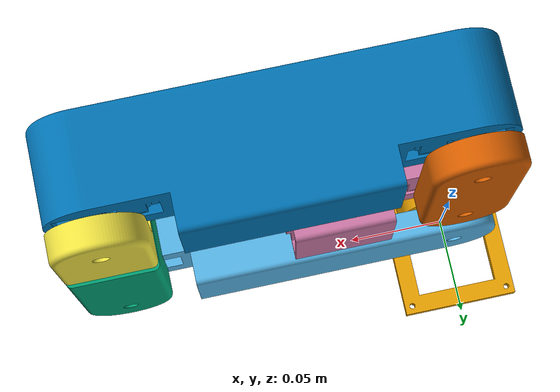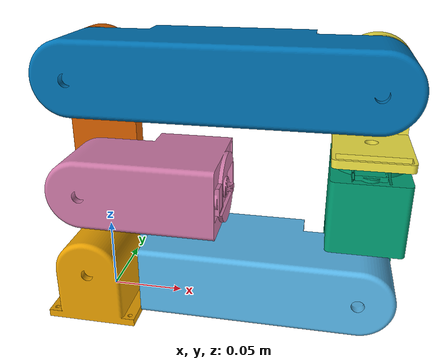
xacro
<?xml version="1.0"?>
<robot xmlns:xacro="http://www.ros.org/wiki/xacro" name="arm3">
    <xacro:arg name="initial_positions_file" default="initial_positions.yaml" />

    <!-- Import arm3 urdf file -->
    <xacro:include filename="$(find arm3_description)/urdf/arm3.urdf" />

    <!-- Import control_xacro -->
    <xacro:include filename="arm3.ros2_control.xacro" />

    <xacro:arm3_ros2_control name="FakeSystem" />

</robot>

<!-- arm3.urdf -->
<robot name="arm3">
    <link name="base_link">
        <inertial>
            <origin xyz="-1.188415750328633e-09 -0.020862080792945627 0.02351089822104169" rpy="0.0 0.0 0.0" />
            <mass value="0.8649605268138625" />
            <inertia ixx="0.0005091080176490385" iyy="0.00040051606955903633" izz="0.000456781148628419" ixy="2.017447833990726e-11" iyz="6.001050632423394e-05" ixz="1.2800998119586669e-11" />
        </inertial>
        <visual name="base_link_visual">
            <origin xyz="0.0 0.0 0.0" rpy="0.0 0.0 0.0" />
            <geometry>
                <mesh filename="package://arm3_description/meshes/base_link.stl" scale="0.001 0.001 0.001" />
            </geometry>
        </visual>
        <collision name="base_link_collision">
            <origin xyz="0.0 0.0 0.0" rpy="0.0 0.0 0.0" />
            <geometry>
                <mesh filename="package://arm3_description/meshes/base_link.stl" scale="0.001 0.001 0.001" />
            </geometry>
        </collision>
    </link>
    <link name="arm_1">
        <inertial>
            <origin xyz="0.10650064034424997 -5.514573064857586e-10 -0.014859090607788348" rpy="0.0 -0.0 0.0" />
            <mass value="1.8640074270642077" />
            <inertia ixx="0.0012293916356250095" iyy="0.007030587931090102" izz="0.006618762705733333" ixy="9.733320139454493e-11" iyz="1.4003596025824482e-11" ixz="0.0010796405966336652" />
        </inertial>
        <visual name="arm_1_visual">
            <origin xyz="0.072 -0.045 0.0030000021411000083" rpy="1.5707963267948963 4.5261550790144846e-79 -2.2315667455012782e-110" />
            <geometry>
                <mesh filename="package://arm3_description/meshes/arm_1.stl" scale="0.001 0.001 0.001" />
            </geometry>
        </visual>
        <collision name="arm_1_collision">
            <origin xyz="0.072 -0.045 0.0030000021411000083" rpy="1.5707963267948963 4.5261550790144846e-79 -2.2315667455012782e-110" />
            <geometry>
                <mesh filename="package://arm3_description/meshes/arm_1.stl" scale="0.001 0.001 0.001" />
            </geometry>
        </collision>
    </link>
    <link name="arm_2">
        <inertial>
            <origin xyz="9.298725345274761e-10 -0.046322761859584 -0.01124850249317479" rpy="0.0 -0.0 0.0" />
            <mass value="1.1054515445122186" />
            <inertia ixx="0.0011269854729143332" iyy="0.0006146812341975352" izz="0.0009027924480591032" ixy="6.493354465231249e-12" iyz="-0.00029226251125904893" ixz="3.3793059496523004e-12" />
        </inertial>
        <visual name="arm_2_visual">
            <origin xyz="0.013500000000000014 -0.05849999999999998 0.003000004282200013" rpy="1.5707963267948963 -0.0 2.698802673467014e-79" />
            <geometry>
                <mesh filename="package://arm3_description/meshes/arm_2.stl" scale="0.001 0.001 0.001" />
            </geometry>
        </visual>
        <collision name="arm_2_collision">
            <origin xyz="0.013500000000000014 -0.05849999999999998 0.003000004282200013" rpy="1.5707963267948963 -0.0 2.698802673467014e-79" />
            <geometry>
                <mesh filename="package://arm3_description/meshes/arm_2.stl" scale="0.001 0.001 0.001" />
            </geometry>
        </collision>
    </link>
    <link name="arm_3">
        <inertial>
            <origin xyz="-3.801403636316536e-15 0.01766179279414297 0.028362432726066623" rpy="0.0 -0.0 0.0" />
            <mass value="0.3866919911236247" />
            <inertia ixx="0.00022345752781510568" iyy="0.00020435292015233072" izz="0.00014285677267166473" ixy="3.0040753277961116e-11" iyz="-6.055343015939629e-05" ixz="3.004076674917311e-11" />
        </inertial>
        <visual name="arm_3_visual">
            <origin xyz="7.105427357601002e-17 4.282200001259895e-09 0.0030000021410999623" rpy="-1.9890203340171088e-16 -0.0 5.618011625630638e-95" />
            <geometry>
                <mesh filename="package://arm3_description/meshes/arm_3.stl" scale="0.001 0.001 0.001" />
            </geometry>
        </visual>
        <collision name="arm_3_collision">
            <origin xyz="7.105427357601002e-17 4.282200001259895e-09 0.0030000021410999623" rpy="-1.9890203340171088e-16 -0.0 5.618011625630638e-95" />
            <geometry>
                <mesh filename="package://arm3_description/meshes/arm_3.stl" scale="0.001 0.001 0.001" />
            </geometry>
        </collision>
    </link>
    <link name="arm_4">
        <inertial>
            <origin xyz="-0.08599999999999698 2.1645027814543027e-09 0.02008578479393376" rpy="0.0 -0.0 0.0" />
            <mass value="2.371653909040455" />
            <inertia ixx="0.0012533831266328815" iyy="0.01074299476657482" izz="0.010481174641859214" ixy="-1.767307966638043e-10" iyz="-3.4019488615030274e-13" ixz="1.4635075977272978e-16" />
        </inertial>
        <visual name="arm_4_visual">
            <origin xyz="-0.09999999999999994 0.04500000214109992 -4.282200002092563e-09" rpy="-1.5707963267948966 -0.0 0.0" />
            <geometry>
                <mesh filename="package://arm3_description/meshes/arm_4.stl" scale="0.001 0.001 0.001" />
            </geometry>
        </visual>
        <collision name="arm_4_collision">
            <origin xyz="-0.09999999999999994 0.04500000214109992 -4.282200002092563e-09" rpy="-1.5707963267948966 -0.0 0.0" />
            <geometry>
                <mesh filename="package://arm3_description/meshes/arm_4.stl" scale="0.001 0.001 0.001" />
            </geometry>
        </collision>
    </link>
    <link name="arm_5">
        <inertial>
            <origin xyz="2.7011624616588083e-17 0.03604999785890012 0.01051589269916724" rpy="0.0 -0.0 0.0" />
            <mass value="0.5465524334585093" />
            <inertia ixx="0.0005395879319698271" iyy="9.64355550217386e-05" izz="0.0006159254529286146" ixy="-6.008158682764333e-11" iyz="2.0991072260237423e-19" ixz="-8.552667084117707e-22" />
        </inertial>
        <visual name="arm_5_visual">
            <origin xyz="0.024999999950109417 0.012999997809009437 0.003000004282200003" rpy="1.5707963267948966 9.363352709384395e-97 -4.2168791772922093e-81" />
            <geometry>
                <mesh filename="package://arm3_description/meshes/arm_5.stl" scale="0.001 0.001 0.001" />
            </geometry>
        </visual>
        <collision name="arm_5_collision">
            <origin xyz="0.024999999950109417 0.012999997809009437 0.003000004282200003" rpy="1.5707963267948966 9.363352709384395e-97 -4.2168791772922093e-81" />
            <geometry>
                <mesh filename="package://arm3_description/meshes/arm_5.stl" scale="0.001 0.001 0.001" />
            </geometry>
        </collision>
    </link>
    <link name="arm_6">
        <inertial>
            <origin xyz="0.03770065749058546 9.494893227213196e-10 0.01998358486384085" rpy="0.0 -0.0 0.0" />
            <mass value="1.7253109869141712" />
            <inertia ixx="0.0007363358667145381" iyy="0.001899600097244089" izz="0.001765437785906484" ixy="1.1718103917757183e-11" iyz="-2.6388872857718845e-11" ixz="0.0001241716581803469" />
        </inertial>
        <visual name="arm_6_visual">
            <origin xyz="0.06350000000000003 0.06876191428219997 0.013761907858900017" rpy="-1.5707963267948968 -0.0 0.0" />
            <geometry>
                <mesh filename="package://arm3_description/meshes/arm_6.stl" scale="0.001 0.001 0.001" />
            </geometry>
        </visual>
        <collision name="arm_6_collision">
            <origin xyz="0.06350000000000003 0.06876191428219997 0.013761907858900017" rpy="-1.5707963267948968 -0.0 0.0" />
            <geometry>
                <mesh filename="package://arm3_description/meshes/arm_6.stl" scale="0.001 0.001 0.001" />
            </geometry>
        </collision>
    </link>
    <joint name="servo_1" type="revolute">
        <origin xyz="0.0 -0.0007380900000000001 0.036000000000000004" rpy="-1.5707963267948966 -0.0 0.0" />
        <parent link="base_link" />
        <child link="arm_1" />
        <axis xyz="0.0 4.9303806576313216e-32 1.0" />
        <limit lower="-3.141593" upper="0.0" effort="100" velocity="5.0" />
    </joint>
    <joint name="servo_2" type="revolute">
        <origin xyz="0.172 0.0 -0.0007380900000000001" rpy="-4.9303806576313216e-32 -0.0 0.0" />
        <parent link="arm_1" />
        <child link="arm_2" />
        <axis xyz="0.0 0.0 1.0" />
        <limit lower="0.0" upper="3.141593" effort="100" velocity="5.0" />
    </joint>
    <joint name="servo_3" type="revolute">
        <origin xyz="0.0 -0.08236191 -0.014499999999999999" rpy="1.5707963267948966 -0.0 0.0" />
        <parent link="arm_2" />
        <child link="arm_3" />
        <axis xyz="0.0 0.0 1.0" />
        <limit lower="-1.570796" upper="1.570796" effort="100" velocity="5.0" />
    </joint>
    <joint name="servo_4" type="revolute">
        <origin xyz="0.0 0.014499999999999999 0.04650000000000002" rpy="1.5707963267948966 -0.0 0.0" />
        <parent link="arm_3" />
        <child link="arm_4" />
        <axis xyz="0.0 -1.5407439555097887e-33 1.0" />
        <limit lower="-3.141593" upper="0.0" effort="100" velocity="5.0" />
    </joint>
    <joint name="servo_5" type="revolute">
        <origin xyz="-0.172 0.0 0.0" rpy="3.141592653589793 -0.0 0.0" />
        <parent link="arm_4" />
        <child link="arm_5" />
        <axis xyz="0.0 -2.2204460492503126e-16 1.0" />
        <limit lower="0.0" upper="3.141593" effort="100" velocity="5.0" />
    </joint>
    <joint name="servo_6" type="revolute">
        <origin xyz="0.0 0.07210000000000001 1.609823385706477e-17" rpy="-3.141592653589793 -0.0 0.0" />
        <parent link="arm_5" />
        <child link="arm_6" />
        <axis xyz="0.0 1.5407439555097887e-33 1.0" />
        <limit lower="-3.141593" upper="0.0" effort="100" velocity="5.0" />
    </joint>
</robot>
